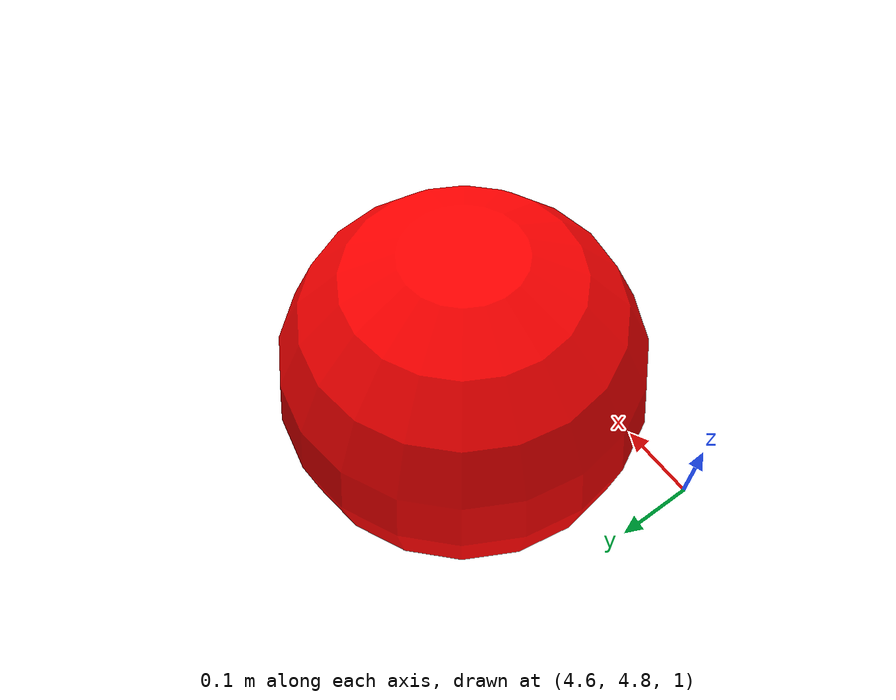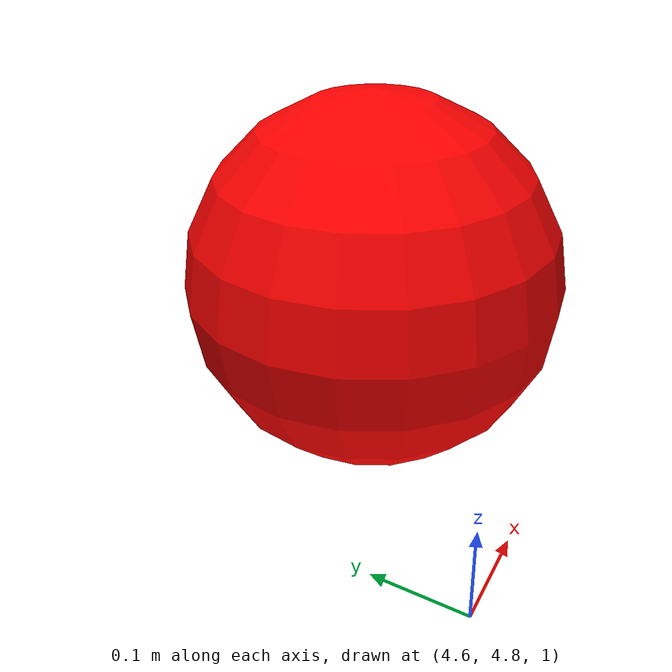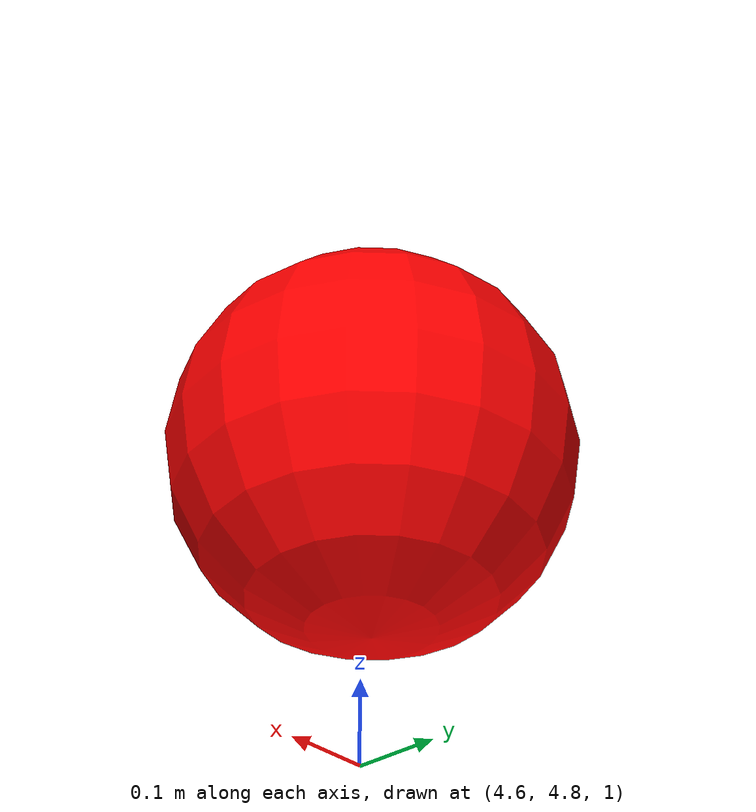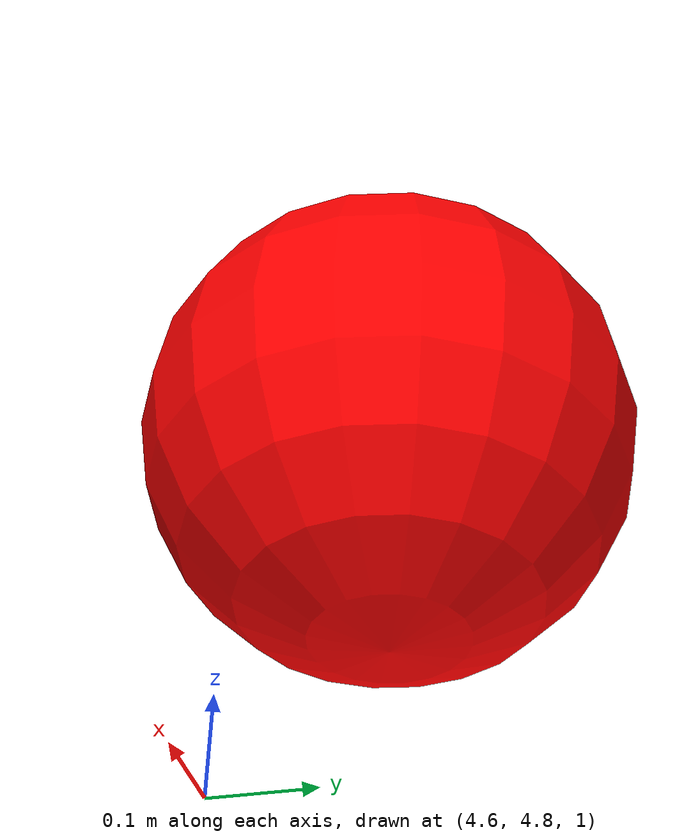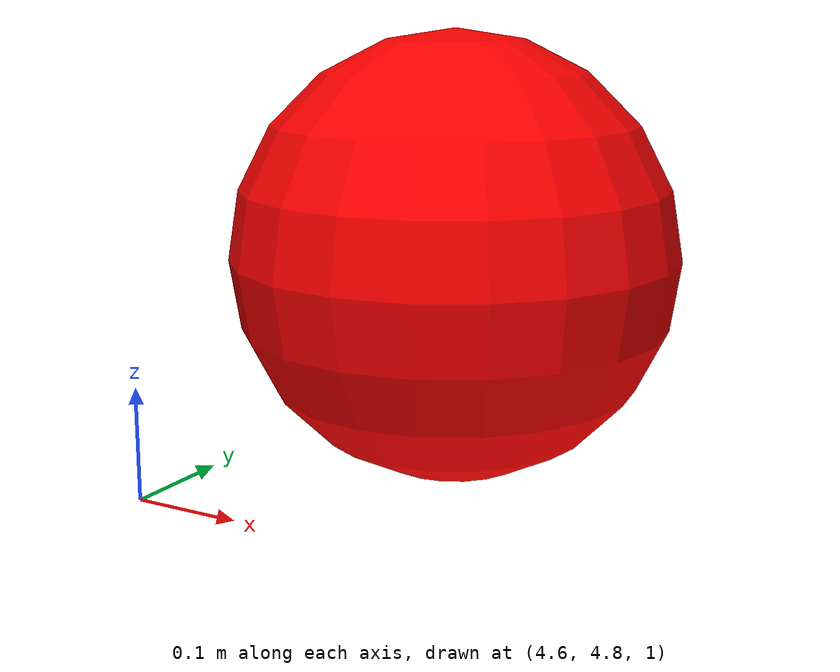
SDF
<?xml version="1.0" ?>
<sdf version="1.6">
  <model name="red_ball">
    <pose>4.8 5.0 1.2 0 0 0</pose>
    <static>false</static>
    <link name="link">
      <inertial>
        <mass>0.5</mass>
        <inertia>
          <ixx>0.008</ixx>
          <ixy>0.0</ixy>
          <ixz>0.0</ixz>
          <iyy>0.008</iyy>
          <iyz>0.0</iyz>
          <izz>0.008</izz>
        </inertia>
      </inertial>
      <visual name="visual">
        <geometry>
          <sphere>
            <radius>0.2</radius>
          </sphere>
        </geometry>
        <material>
          <ambient>1 0 0 1</ambient>
          <diffuse>1 0 0 1</diffuse>
        </material>
      </visual>
      <collision name="collision">
        <geometry>
          <sphere>
            <radius>0.2</radius>
          </sphere>
        </geometry>
      </collision>
    </link>
  </model>
</sdf>
